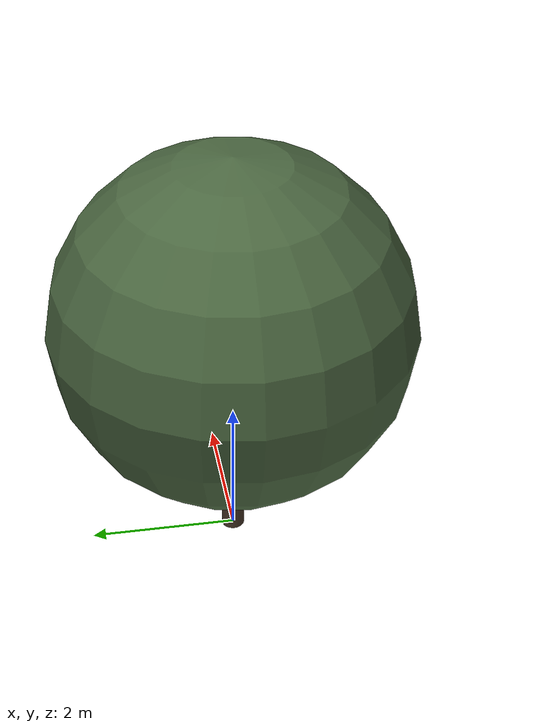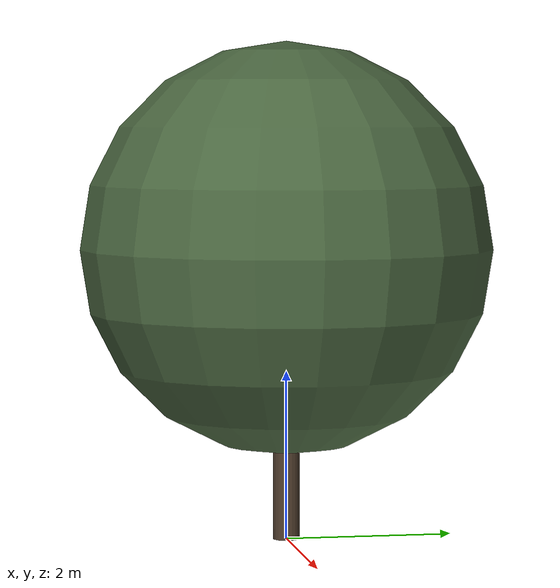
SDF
<?xml version="1.0" ?>
<sdf version="1.10">
  <model name="chene_vert_08">
    <static>true</static>

    <!-- Tronc -->
    <link name="trunk">
      <pose>0 0 1.3647860421429536 0 0 0</pose>
      <visual name="trunk_visual">
        <geometry>
          <cylinder>
            <radius>0.15745438301071604</radius>
            <length>2.7295720842859073</length>
          </cylinder>
        </geometry>
        <material>
          <ambient>0.29 0.22 0.16 1</ambient>
          <diffuse>0.29 0.22 0.16 1</diffuse>
          <specular>0.1 0.1 0.1 1</specular>
        </material>
      </visual>
      <collision name="trunk_collision">
        <geometry>
          <cylinder>
            <radius>0.15745438301071604</radius>
            <length>2.7295720842859073</length>
          </cylinder>
        </geometry>
      </collision>
    </link>

    <!-- Feuillage -->
    <link name="crown">
      <pose>0 0 3.4627162679015027 0 0 0</pose>
      <visual name="crown_visual">
        <geometry>
          <sphere>
              <radius>2.4438139453853176</radius>
            </sphere>
        </geometry>
        <material>
          <ambient>0.29 0.40 0.25 1</ambient>
          <diffuse>0.29 0.40 0.25 1</diffuse>
          <specular>0.1 0.1 0.1 1</specular>
        </material>
      </visual>
      <collision name="crown_collision">
        <geometry>
          <sphere>
            <radius>1.9550511563082542</radius>
          </sphere>
        </geometry>
      </collision>
    </link>

    <!-- Joint tronc-feuillage -->
    <joint name="trunk_crown_joint" type="fixed">
      <parent>trunk</parent>
      <child>crown</child>
    </joint>

  </model>
</sdf>
